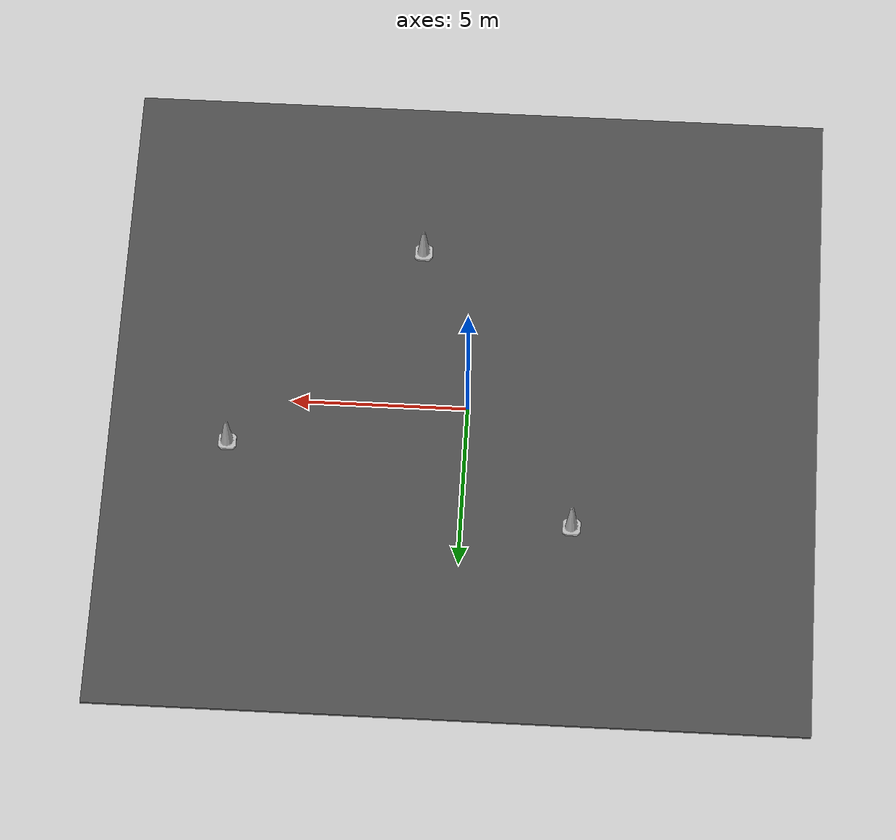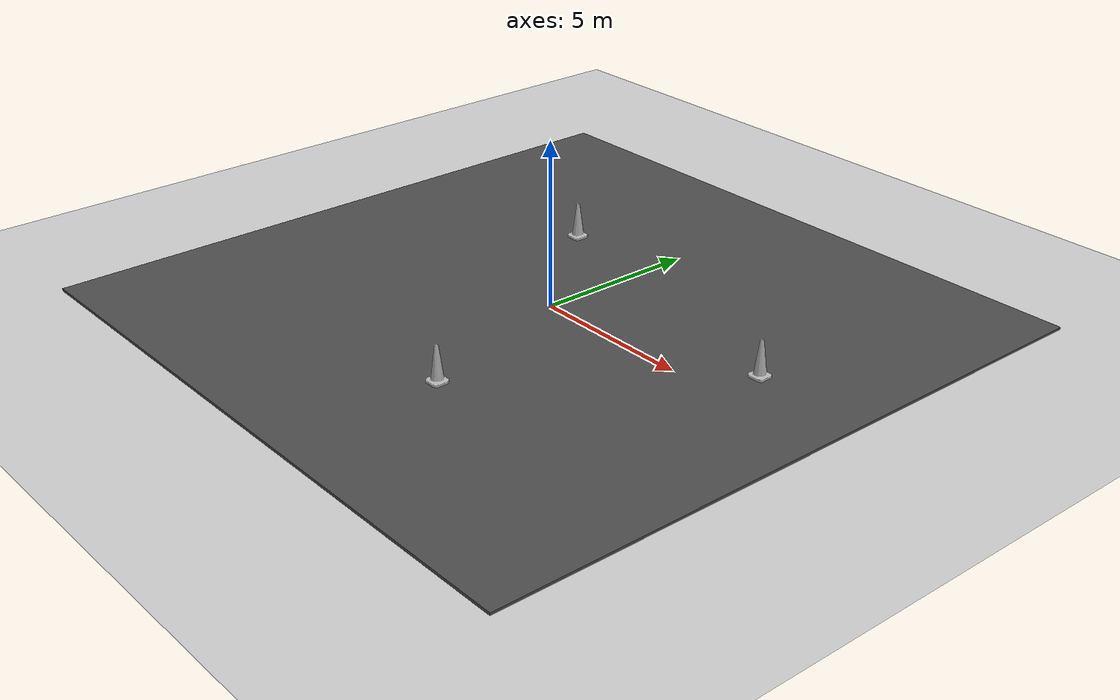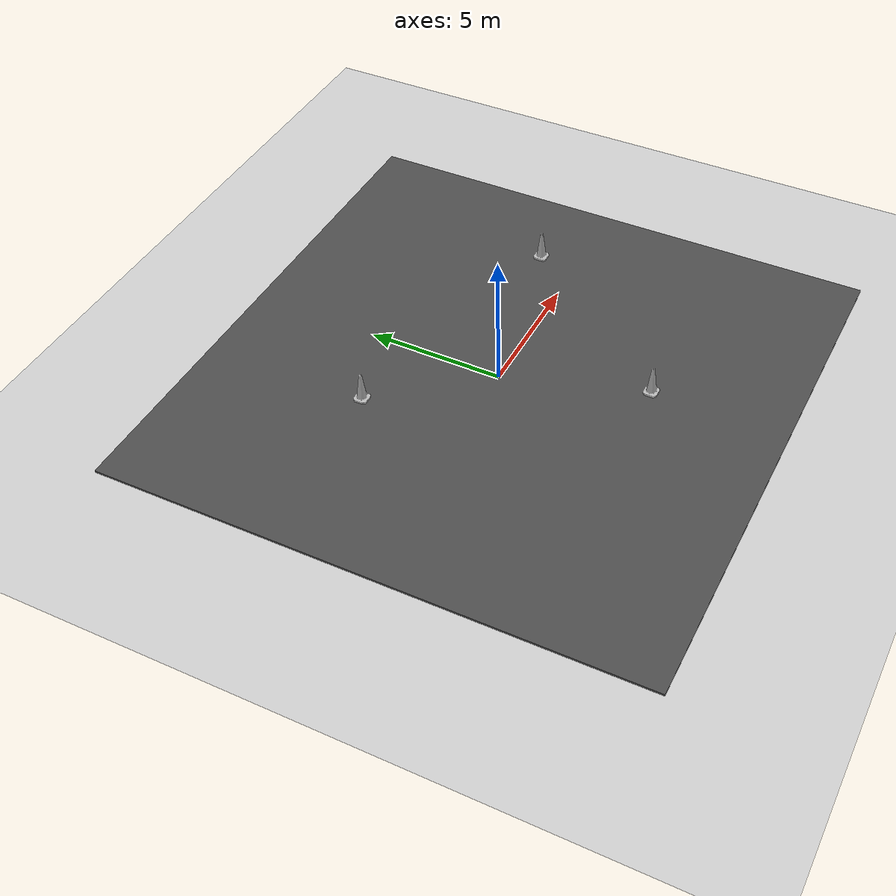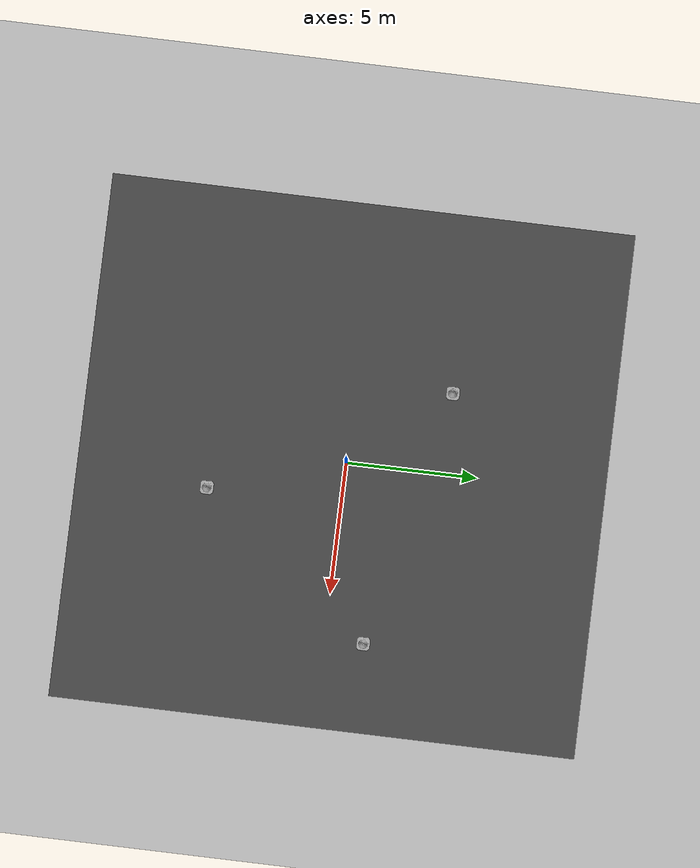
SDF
<sdf version="1.7">
 <world name="default">
  <light name="sun" type="directional">
   <pose>0 0 10 0 -0 0</pose>
   <diffuse>0.8 0.8 0.8 1</diffuse>
   <specular>0.2 0.2 0.2 1</specular>
   <attenuation>
    <range>1000</range>
    <constant>0.9</constant>
    <linear>0.01</linear>
    <quadratic>0.001</quadratic>
   </attenuation>
   <direction>-0.5 0.1 -0.9</direction>
   <spot><inner_angle>0</inner_angle><outer_angle>0</outer_angle><falloff>0</falloff></spot>
  </light>
  <model name="ground_plane">
   <static>1</static>
   <link name="link">
    <collision name="collision">
     <geometry><plane><normal>0 0 1</normal><size>100 100</size></plane></geometry>
     <surface>
      <contact><collide_bitmask>65535</collide_bitmask></contact>
      <friction><ode><mu>100</mu><mu2>50</mu2></ode></friction>
     </surface>
    </collision>
    <visual name="visual">
     <cast_shadows>0</cast_shadows>
     <geometry><plane><normal>0 0 1</normal><size>100 100</size></plane></geometry>
     <material>
      <script><uri>file://media/materials/scripts/gazebo.material</uri><name>Gazebo/Grey</name></script>
     </material>
    </visual>
   </link>
  </model>
  <gravity>0 0 -9.8</gravity>
  <magnetic_field>6e-06 2.3e-05 -4.2e-05</magnetic_field>
  <atmosphere type="adiabatic"/>
  <physics type="ode">
   <max_step_size>0.001</max_step_size>
   <real_time_factor>1</real_time_factor>
   <real_time_update_rate>1000</real_time_update_rate>
  </physics>
  <scene><ambient>0.4 0.4 0.4 1</ambient><background>0.7 0.7 0.7 1</background><shadows>1</shadows></scene>
  <audio><device>default</device></audio>
  <spherical_coordinates>
   <surface_model>EARTH_WGS84</surface_model>
   <latitude_deg>0</latitude_deg>
   <longitude_deg>0</longitude_deg>
   <elevation>0</elevation>
   <heading_deg>0</heading_deg>
  </spherical_coordinates>
  <model name="asphalt_plane">
   <static>1</static>
   <link name="link">
    <collision name="collision"><geometry><box><size>20 20 0.1</size></box></geometry></collision>
    <visual name="visual">
     <cast_shadows>0</cast_shadows>
     <geometry><box><size>20 20 0.1</size></box></geometry>
     <material>
      <script>
       <uri>model://asphalt_plane/materials/scripts</uri>
       <uri>model://asphalt_plane/materials/textures</uri>
       <name>vrc/asphalt</name>
      </script>
     </material>
    </visual>
   </link>
   <pose>0.105017 -0.11611 0 0 -0 0</pose>
  </model>
  <model name="Construction Cone">
   <link name="link">
    <collision name="collision">
     <geometry>
      <mesh><scale>10 10 10</scale><uri>model://construction_cone/meshes/construction_cone.dae</uri></mesh>
     </geometry>
    </collision>
    <visual name="visual">
     <geometry>
      <mesh><scale>10 10 10</scale><uri>model://construction_cone/meshes/construction_cone.dae</uri></mesh>
     </geometry>
    </visual>
    <inertial>
     <inertia><ixx>1</ixx><ixy>0</ixy><ixz>0</ixz><iyy>1</iyy><iyz>0</iyz><izz>1</izz></inertia>
     <mass>1</mass>
    </inertial>
   </link>
   <pose>-3.09517 3.71254 0.05 0 -0 0</pose>
  </model>
  <model name="Construction Cone_0">
   <link name="link">
    <collision name="collision">
     <geometry>
      <mesh><scale>10 10 10</scale><uri>model://construction_cone/meshes/construction_cone.dae</uri></mesh>
     </geometry>
    </collision>
    <visual name="visual">
     <geometry>
      <mesh><scale>10 10 10</scale><uri>model://construction_cone/meshes/construction_cone.dae</uri></mesh>
     </geometry>
    </visual>
    <inertial>
     <inertia><ixx>1</ixx><ixy>0</ixy><ixz>0</ixz><iyy>1</iyy><iyz>0</iyz><izz>1</izz></inertia>
     <mass>1</mass>
    </inertial>
   </link>
   <pose>6.73001 1.46283 0.05 1e-06 -1e-06 0</pose>
  </model>
  <model name="Construction Cone_1">
   <link name="link">
    <collision name="collision">
     <geometry>
      <mesh><scale>10 10 10</scale><uri>model://construction_cone/meshes/construction_cone.dae</uri></mesh>
     </geometry>
    </collision>
    <visual name="visual">
     <geometry>
      <mesh><scale>10 10 10</scale><uri>model://construction_cone/meshes/construction_cone.dae</uri></mesh>
     </geometry>
    </visual>
    <inertial>
     <inertia><ixx>1</ixx><ixy>0</ixy><ixz>0</ixz><iyy>1</iyy><iyz>0</iyz><izz>1</izz></inertia>
     <mass>1</mass>
    </inertial>
   </link>
   <pose>1.55703 -5.12501 0.05 0 -0 0</pose>
  </model>
 </world>
</sdf>
